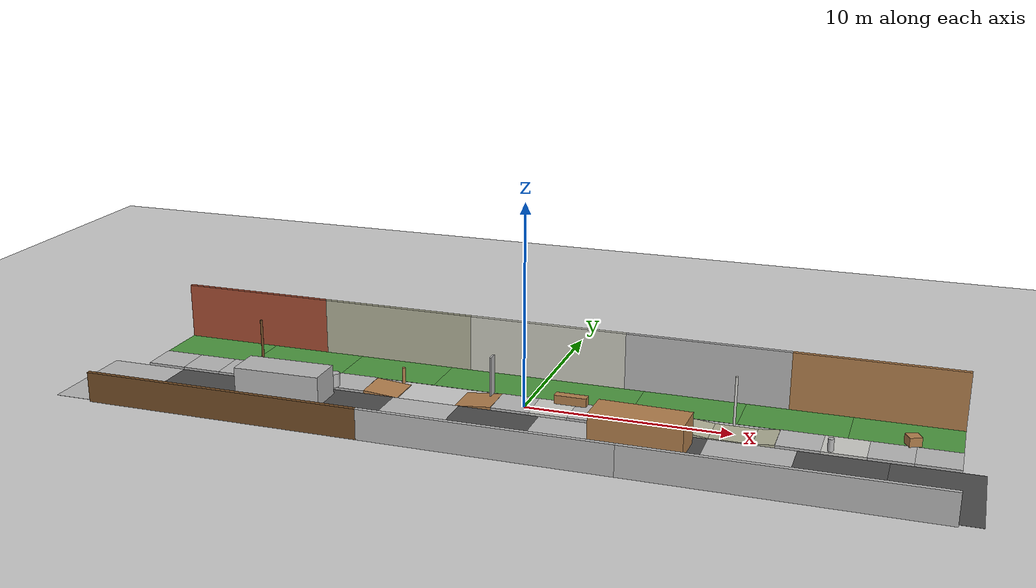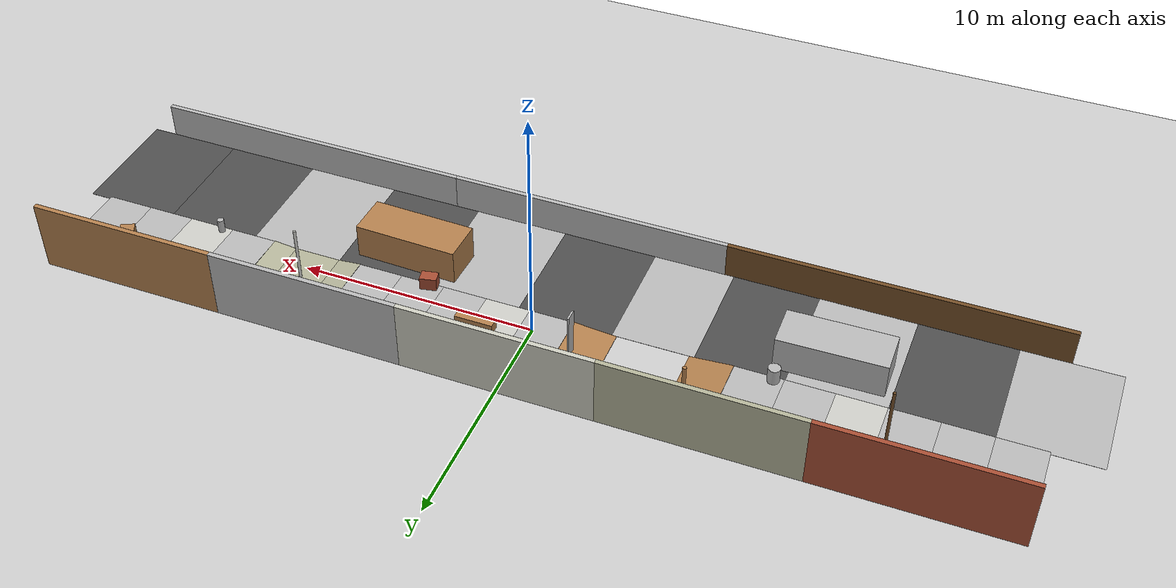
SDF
<?xml version="1.0"?>
<sdf version="1.6">
  <world name="sidewalk">
    <include><uri>model://sun</uri></include>
    <include><uri>model://ground_plane</uri></include>

    <model name="roadway">
      <static>true</static>
      <link name="l">
        <visual name="r01"><pose>-20 -3.45 0.004 0 0 0</pose><geometry><box><size>4 5.1 0.004</size></box></geometry>
          <material><script><uri>file://media/materials/scripts/gazebo.material</uri><name>Gazebo/Motorway</name></script></material></visual>
        <visual name="r02"><pose>-16 -3.45 0.004 0 0 0</pose><geometry><box><size>4 5.1 0.004</size></box></geometry>
          <material><script><uri>file://media/materials/scripts/gazebo.material</uri><name>Gazebo/Road</name></script></material></visual>
        <visual name="r03"><pose>-12 -3.45 0.004 0 0 0</pose><geometry><box><size>4 5.1 0.004</size></box></geometry>
          <material><script><uri>file://media/materials/scripts/gazebo.material</uri><name>Gazebo/Motorway</name></script></material></visual>
        <visual name="r04"><pose>-8.2 -3.45 0.004 0 0 0</pose><geometry><box><size>3.6 5.1 0.004</size></box></geometry>
          <material><script><uri>file://media/materials/scripts/gazebo.material</uri><name>Gazebo/Road</name></script></material></visual>
        <!-- the crossing itself, striped -->
        <visual name="r05_crossing"><pose>-4.7 -3.45 0.004 0 0 0</pose><geometry><box><size>3.4 5.1 0.004</size></box></geometry>
          <material><script><uri>file://media/materials/scripts/gazebo.material</uri><name>Gazebo/Runway</name></script></material></visual>
        <visual name="r06"><pose>-1 -3.45 0.004 0 0 0</pose><geometry><box><size>4 5.1 0.004</size></box></geometry>
          <material><script><uri>file://media/materials/scripts/gazebo.material</uri><name>Gazebo/Road</name></script></material></visual>
        <visual name="r07"><pose>3 -3.45 0.004 0 0 0</pose><geometry><box><size>4 5.1 0.004</size></box></geometry>
          <material><script><uri>file://media/materials/scripts/gazebo.material</uri><name>Gazebo/Motorway</name></script></material></visual>
        <visual name="r08"><pose>7 -3.45 0.004 0 0 0</pose><geometry><box><size>4 5.1 0.004</size></box></geometry>
          <material><script><uri>file://media/materials/scripts/gazebo.material</uri><name>Gazebo/Road</name></script></material></visual>
        <visual name="r09"><pose>11 -3.45 0.004 0 0 0</pose><geometry><box><size>4 5.1 0.004</size></box></geometry>
          <material><script><uri>file://media/materials/scripts/gazebo.material</uri><name>Gazebo/Motorway</name></script></material></visual>
        <visual name="r10"><pose>15 -3.45 0.004 0 0 0</pose><geometry><box><size>4 5.1 0.004</size></box></geometry>
          <material><script><uri>file://media/materials/scripts/gazebo.material</uri><name>Gazebo/Road</name></script></material></visual>
        <visual name="r11"><pose>19 -3.45 0.004 0 0 0</pose><geometry><box><size>4 5.1 0.004</size></box></geometry>
          <material><script><uri>file://media/materials/scripts/gazebo.material</uri><name>Gazebo/Road</name></script></material></visual>
      </link>
    </model>

    <model name="sidewalk">
      <static>true</static>
      <link name="l">

        <!-- ==== west plain run, x -20 to -8 ==== -->
        <collision name="w1_c"><pose>-19 0 0.075 0.02 0 0</pose><geometry><box><size>2 1.8 0.15</size></box></geometry></collision>
        <visual name="w1_v"><pose>-19 0 0.075 0.02 0 0</pose><geometry><box><size>2 1.8 0.15</size></box></geometry>
          <material><script><uri>file://media/materials/scripts/gazebo.material</uri><name>Gazebo/Pedestrian</name></script></material></visual>
        <collision name="w2_c"><pose>-17 0 0.075 0.02 0 0</pose><geometry><box><size>2 1.8 0.15</size></box></geometry></collision>
        <visual name="w2_v"><pose>-17 0 0.075 0.02 0 0</pose><geometry><box><size>2 1.8 0.15</size></box></geometry>
          <material><script><uri>file://media/materials/scripts/gazebo.material</uri><name>Gazebo/Steps</name></script></material></visual>
        <collision name="w3_c"><pose>-15 0 0.075 0.02 0 0</pose><geometry><box><size>2 1.8 0.15</size></box></geometry></collision>
        <visual name="w3_v"><pose>-15 0 0.075 0.02 0 0</pose><geometry><box><size>2 1.8 0.15</size></box></geometry>
          <material><script><uri>file://media/materials/scripts/gazebo.material</uri><name>Gazebo/Pedestrian</name></script></material></visual>
        <collision name="w4_c"><pose>-13 0 0.075 0.02 0 0</pose><geometry><box><size>2 1.8 0.15</size></box></geometry></collision>
        <visual name="w4_v"><pose>-13 0 0.075 0.02 0 0</pose><geometry><box><size>2 1.8 0.15</size></box></geometry>
          <material><script><uri>file://media/materials/scripts/gazebo.material</uri><name>Gazebo/CeilingTiled</name></script></material></visual>
        <collision name="w5_c"><pose>-11 0 0.075 0.02 0 0</pose><geometry><box><size>2 1.8 0.15</size></box></geometry></collision>
        <visual name="w5_v"><pose>-11 0 0.075 0.02 0 0</pose><geometry><box><size>2 1.8 0.15</size></box></geometry>
          <material><script><uri>file://media/materials/scripts/gazebo.material</uri><name>Gazebo/Pedestrian</name></script></material></visual>
        <collision name="w6_c"><pose>-9 0 0.075 0.02 0 0</pose><geometry><box><size>2 1.8 0.15</size></box></geometry></collision>
        <visual name="w6_v"><pose>-9 0 0.075 0.02 0 0</pose><geometry><box><size>2 1.8 0.15</size></box></geometry>
          <material><script><uri>file://media/materials/scripts/gazebo.material</uri><name>Gazebo/Steps</name></script></material></visual>

        <collision name="ramp_a_c"><pose>-7.1 0 0.0003 0 0.0831 0</pose><geometry><box><size>1.8 1.8 0.15</size></box></geometry></collision>
        <visual name="ramp_a_v"><pose>-7.1 0 0.0003 0 0.0831 0</pose><geometry><box><size>1.8 1.8 0.15</size></box></geometry>
          <material><script><uri>file://media/materials/scripts/gazebo.material</uri><name>Gazebo/WoodPallet</name></script></material></visual>

        <!-- ==== crossing, x -6.2 to -3.2: deliberately NO slab.
             The robot drops to road level and drives on the ground_plane. ==-->

        <!-- ==== kerb ramp UP, x -3.2 to -1.4 ==== -->
        <collision name="ramp_b_c"><pose>-2.3 0 0.0003 0 -0.0831 0</pose><geometry><box><size>1.8 1.8 0.15</size></box></geometry></collision>
        <visual name="ramp_b_v"><pose>-2.3 0 0.0003 0 -0.0831 0</pose><geometry><box><size>1.8 1.8 0.15</size></box></geometry>
          <material><script><uri>file://media/materials/scripts/gazebo.material</uri><name>Gazebo/WoodPallet</name></script></material></visual>

        <!-- ==== central plain run, x -1.4 to +8.0. Robot spawns at x=0. ==== -->
        <collision name="c1_c"><pose>-0.46 0 0.075 0.02 0 0</pose><geometry><box><size>1.88 1.8 0.15</size></box></geometry></collision>
        <visual name="c1_v"><pose>-0.46 0 0.075 0.02 0 0</pose><geometry><box><size>1.88 1.8 0.15</size></box></geometry>
          <material><script><uri>file://media/materials/scripts/gazebo.material</uri><name>Gazebo/Pedestrian</name></script></material></visual>
        <collision name="c2_c"><pose>1.42 0 0.075 0.02 0 0</pose><geometry><box><size>1.88 1.8 0.15</size></box></geometry></collision>
        <visual name="c2_v"><pose>1.42 0 0.075 0.02 0 0</pose><geometry><box><size>1.88 1.8 0.15</size></box></geometry>
          <material><script><uri>file://media/materials/scripts/gazebo.material</uri><name>Gazebo/CeilingTiled</name></script></material></visual>
        <collision name="c3_c"><pose>3.30 0 0.075 0.02 0 0</pose><geometry><box><size>1.88 1.8 0.15</size></box></geometry></collision>
        <visual name="c3_v"><pose>3.30 0 0.075 0.02 0 0</pose><geometry><box><size>1.88 1.8 0.15</size></box></geometry>
          <material><script><uri>file://media/materials/scripts/gazebo.material</uri><name>Gazebo/Pedestrian</name></script></material></visual>
        <collision name="c4_c"><pose>5.18 0 0.075 0.02 0 0</pose><geometry><box><size>1.88 1.8 0.15</size></box></geometry></collision>
        <visual name="c4_v"><pose>5.18 0 0.075 0.02 0 0</pose><geometry><box><size>1.88 1.8 0.15</size></box></geometry>
          <material><script><uri>file://media/materials/scripts/gazebo.material</uri><name>Gazebo/Steps</name></script></material></visual>
        <collision name="c5_c"><pose>7.06 0 0.075 0.02 0 0</pose><geometry><box><size>1.88 1.8 0.15</size></box></geometry></collision>
        <visual name="c5_v"><pose>7.06 0 0.075 0.02 0 0</pose><geometry><box><size>1.88 1.8 0.15</size></box></geometry>
          <material><script><uri>file://media/materials/scripts/gazebo.material</uri><name>Gazebo/Pedestrian</name></script></material></visual>

        <collision name="dw_down_c"><pose>8.5 0 0.0254 0 0.0997 0</pose><geometry><box><size>1.0 1.8 0.15</size></box></geometry></collision>
        <visual name="dw_down_v"><pose>8.5 0 0.0254 0 0.0997 0</pose><geometry><box><size>1.0 1.8 0.15</size></box></geometry>
          <material><script><uri>file://media/materials/scripts/gazebo.material</uri><name>Gazebo/Residential</name></script></material></visual>
        <collision name="dw_flat_c"><pose>10 0 -0.025 0 0 0</pose><geometry><box><size>2.0 1.8 0.15</size></box></geometry></collision>
        <visual name="dw_flat_v"><pose>10 0 -0.025 0 0 0</pose><geometry><box><size>2.0 1.8 0.15</size></box></geometry>
          <material><script><uri>file://media/materials/scripts/gazebo.material</uri><name>Gazebo/Residential</name></script></material></visual>
        <collision name="dw_up_c"><pose>11.5 0 0.0254 0 -0.0997 0</pose><geometry><box><size>1.0 1.8 0.15</size></box></geometry></collision>
        <visual name="dw_up_v"><pose>11.5 0 0.0254 0 -0.0997 0</pose><geometry><box><size>1.0 1.8 0.15</size></box></geometry>
          <material><script><uri>file://media/materials/scripts/gazebo.material</uri><name>Gazebo/Residential</name></script></material></visual>

        <!-- ==== east plain run, x +12 to +20 ==== -->
        <collision name="e1_c"><pose>13 0 0.075 0.02 0 0</pose><geometry><box><size>2 1.8 0.15</size></box></geometry></collision>
        <visual name="e1_v"><pose>13 0 0.075 0.02 0 0</pose><geometry><box><size>2 1.8 0.15</size></box></geometry>
          <material><script><uri>file://media/materials/scripts/gazebo.material</uri><name>Gazebo/Pedestrian</name></script></material></visual>
        <collision name="e2_c"><pose>15 0 0.075 0.02 0 0</pose><geometry><box><size>2 1.8 0.15</size></box></geometry></collision>
        <visual name="e2_v"><pose>15 0 0.075 0.02 0 0</pose><geometry><box><size>2 1.8 0.15</size></box></geometry>
          <material><script><uri>file://media/materials/scripts/gazebo.material</uri><name>Gazebo/CeilingTiled</name></script></material></visual>
        <collision name="e3_c"><pose>17 0 0.075 0.02 0 0</pose><geometry><box><size>2 1.8 0.15</size></box></geometry></collision>
        <visual name="e3_v"><pose>17 0 0.075 0.02 0 0</pose><geometry><box><size>2 1.8 0.15</size></box></geometry>
          <material><script><uri>file://media/materials/scripts/gazebo.material</uri><name>Gazebo/Pedestrian</name></script></material></visual>
        <collision name="e4_c"><pose>19 0 0.075 0.02 0 0</pose><geometry><box><size>2 1.8 0.15</size></box></geometry></collision>
        <visual name="e4_v"><pose>19 0 0.075 0.02 0 0</pose><geometry><box><size>2 1.8 0.15</size></box></geometry>
          <material><script><uri>file://media/materials/scripts/gazebo.material</uri><name>Gazebo/Steps</name></script></material></visual>

      </link>
    </model>

    <!-- ==== GRASS VERGE, y +0.9 to +3.5 ==============================
         Visual only, so it can never trap a wheel. Tiled in 5 m lengths. -->
    <model name="verge">
      <static>true</static>
      <link name="l">
        <visual name="g1"><pose>-17.5 2.2 0.145 0 0 0</pose><geometry><box><size>5 2.6 0.01</size></box></geometry>
          <material><script><uri>file://media/materials/scripts/gazebo.material</uri><name>Gazebo/Grass</name></script></material></visual>
        <visual name="g2"><pose>-12.5 2.2 0.145 0 0 0</pose><geometry><box><size>5 2.6 0.01</size></box></geometry>
          <material><script><uri>file://media/materials/scripts/gazebo.material</uri><name>Gazebo/Grass</name></script></material></visual>
        <visual name="g3"><pose>-7.5 2.2 0.145 0 0 0</pose><geometry><box><size>5 2.6 0.01</size></box></geometry>
          <material><script><uri>file://media/materials/scripts/gazebo.material</uri><name>Gazebo/Grass</name></script></material></visual>
        <visual name="g4"><pose>-2.5 2.2 0.145 0 0 0</pose><geometry><box><size>5 2.6 0.01</size></box></geometry>
          <material><script><uri>file://media/materials/scripts/gazebo.material</uri><name>Gazebo/Grass</name></script></material></visual>
        <visual name="g5"><pose>2.5 2.2 0.145 0 0 0</pose><geometry><box><size>5 2.6 0.01</size></box></geometry>
          <material><script><uri>file://media/materials/scripts/gazebo.material</uri><name>Gazebo/Grass</name></script></material></visual>
        <visual name="g6"><pose>7.5 2.2 0.145 0 0 0</pose><geometry><box><size>5 2.6 0.01</size></box></geometry>
          <material><script><uri>file://media/materials/scripts/gazebo.material</uri><name>Gazebo/Grass</name></script></material></visual>
        <visual name="g7"><pose>12.5 2.2 0.145 0 0 0</pose><geometry><box><size>5 2.6 0.01</size></box></geometry>
          <material><script><uri>file://media/materials/scripts/gazebo.material</uri><name>Gazebo/Grass</name></script></material></visual>
        <visual name="g8"><pose>17.5 2.2 0.145 0 0 0</pose><geometry><box><size>5 2.6 0.01</size></box></geometry>
          <material><script><uri>file://media/materials/scripts/gazebo.material</uri><name>Gazebo/Grass</name></script></material></visual>
      </link>
    </model>

    <model name="facades">
      <static>true</static>
      <link name="l">
        <collision name="f1_c"><pose>-16 3.6 1.5 0 0 0</pose><geometry><box><size>8 0.2 3</size></box></geometry></collision>
        <visual name="f1_v"><pose>-16 3.6 1.5 0 0 0</pose><geometry><box><size>8 0.2 3</size></box></geometry>
          <material><script><uri>file://media/materials/scripts/gazebo.material</uri><name>Gazebo/Bricks</name></script></material></visual>
        <collision name="f2_c"><pose>-8 3.6 1.5 0 0 0</pose><geometry><box><size>8 0.2 3</size></box></geometry></collision>
        <visual name="f2_v"><pose>-8 3.6 1.5 0 0 0</pose><geometry><box><size>8 0.2 3</size></box></geometry>
          <material><script><uri>file://media/materials/scripts/gazebo.material</uri><name>Gazebo/Residential</name></script></material></visual>
        <collision name="f3_c"><pose>0 3.6 1.5 0 0 0</pose><geometry><box><size>8 0.2 3</size></box></geometry></collision>
        <visual name="f3_v"><pose>0 3.6 1.5 0 0 0</pose><geometry><box><size>8 0.2 3</size></box></geometry>
          <material><script><uri>file://media/materials/scripts/gazebo.material</uri><name>Gazebo/PaintedWall</name></script></material></visual>
        <collision name="f4_c"><pose>8 3.6 1.5 0 0 0</pose><geometry><box><size>8 0.2 3</size></box></geometry></collision>
        <visual name="f4_v"><pose>8 3.6 1.5 0 0 0</pose><geometry><box><size>8 0.2 3</size></box></geometry>
          <material><script><uri>file://media/materials/scripts/gazebo.material</uri><name>Gazebo/BuildingFrame</name></script></material></visual>
        <collision name="f5_c"><pose>16 3.6 1.5 0 0 0</pose><geometry><box><size>8 0.2 3</size></box></geometry></collision>
        <visual name="f5_v"><pose>16 3.6 1.5 0 0 0</pose><geometry><box><size>8 0.2 3</size></box></geometry>
          <material><script><uri>file://media/materials/scripts/gazebo.material</uri><name>Gazebo/Wood</name></script></material></visual>
      </link>
    </model>

    <model name="far_wall">
      <static>true</static>
      <link name="l">
        <collision name="b1_c"><pose>-13 -6.1 0.75 0 0 0</pose><geometry><box><size>14 0.2 1.5</size></box></geometry></collision>
        <visual name="b1_v"><pose>-13 -6.1 0.75 0 0 0</pose><geometry><box><size>14 0.2 1.5</size></box></geometry>
          <material><script><uri>file://media/materials/scripts/gazebo.material</uri><name>Gazebo/Trunk</name></script></material></visual>
        <collision name="b2_c"><pose>0 -6.1 0.75 0 0 0</pose><geometry><box><size>12 0.2 1.5</size></box></geometry></collision>
        <visual name="b2_v"><pose>0 -6.1 0.75 0 0 0</pose><geometry><box><size>12 0.2 1.5</size></box></geometry>
          <material><script><uri>file://media/materials/scripts/gazebo.material</uri><name>Gazebo/Primary</name></script></material></visual>
        <collision name="b3_c"><pose>13 -6.1 0.75 0 0 0</pose><geometry><box><size>14 0.2 1.5</size></box></geometry></collision>
        <visual name="b3_v"><pose>13 -6.1 0.75 0 0 0</pose><geometry><box><size>14 0.2 1.5</size></box></geometry>
          <material><script><uri>file://media/materials/scripts/gazebo.material</uri><name>Gazebo/Secondary</name></script></material></visual>
      </link>
    </model>

    <model name="pole_a"><static>true</static><pose>-14.3 0.72 1.35 0 0 0</pose>
      <link name="l"><collision name="c"><geometry><cylinder><radius>0.06</radius><length>2.4</length></cylinder></geometry></collision>
        <visual name="v"><geometry><cylinder><radius>0.06</radius><length>2.4</length></cylinder></geometry>
          <material><script><uri>file://media/materials/scripts/gazebo.material</uri><name>Gazebo/Trunk</name></script></material></visual></link></model>

    <model name="bin_a"><static>true</static><pose>-9.6 -0.70 0.45 0 0 0.3</pose>
      <link name="l"><collision name="c"><geometry><cylinder><radius>0.25</radius><length>0.7</length></cylinder></geometry></collision>
        <visual name="v"><geometry><cylinder><radius>0.25</radius><length>0.7</length></cylinder></geometry>
          <material><script><uri>file://media/materials/scripts/gazebo.material</uri><name>Gazebo/Motorway</name></script></material></visual></link></model>

    <model name="bollard_a"><static>true</static><pose>-6.5 0.7 0.55 0 0 0</pose>
      <link name="l"><collision name="c"><geometry><cylinder><radius>0.08</radius><length>0.8</length></cylinder></geometry></collision>
        <visual name="v"><geometry><cylinder><radius>0.08</radius><length>0.8</length></cylinder></geometry>
          <material><script><uri>file://media/materials/scripts/gazebo.material</uri><name>Gazebo/WoodPallet</name></script></material></visual></link></model>

    <model name="sign_crossing"><static>true</static><pose>-1.9 0.74 1.1 0 0 0</pose>
      <link name="l"><collision name="c"><geometry><box><size>0.08 0.5 2.0</size></box></geometry></collision>
        <visual name="v"><geometry><box><size>0.08 0.5 2.0</size></box></geometry>
          <material><script><uri>file://media/materials/scripts/gazebo.material</uri><name>Gazebo/Runway</name></script></material></visual></link></model>

    <model name="bench_a"><static>true</static><pose>2.1 0.74 0.37 0 0 0</pose>
      <link name="l"><collision name="c"><geometry><box><size>1.6 0.45 0.45</size></box></geometry></collision>
        <visual name="v"><geometry><box><size>1.6 0.45 0.45</size></box></geometry>
          <material><script><uri>file://media/materials/scripts/gazebo.material</uri><name>Gazebo/Wood</name></script></material></visual></link></model>

    <model name="planter_a"><static>true</static><pose>4.8 -0.74 0.42 0 0 0.2</pose>
      <link name="l"><collision name="c"><geometry><box><size>0.7 0.5 0.55</size></box></geometry></collision>
        <visual name="v"><geometry><box><size>0.7 0.5 0.55</size></box></geometry>
          <material><script><uri>file://media/materials/scripts/gazebo.material</uri><name>Gazebo/Bricks</name></script></material></visual></link></model>

    <model name="pole_b"><static>true</static><pose>9.9 0.71 1.35 0 0 0</pose>
      <link name="l"><collision name="c"><geometry><cylinder><radius>0.06</radius><length>2.4</length></cylinder></geometry></collision>
        <visual name="v"><geometry><cylinder><radius>0.06</radius><length>2.4</length></cylinder></geometry>
          <material><script><uri>file://media/materials/scripts/gazebo.material</uri><name>Gazebo/CeilingTiled</name></script></material></visual></link></model>

    <model name="hydrant_a"><static>true</static><pose>14.4 -0.68 0.4 0 0 0</pose>
      <link name="l"><collision name="c"><geometry><cylinder><radius>0.14</radius><length>0.65</length></cylinder></geometry></collision>
        <visual name="v"><geometry><cylinder><radius>0.14</radius><length>0.65</length></cylinder></geometry>
          <material><script><uri>file://media/materials/scripts/gazebo.material</uri><name>Gazebo/Steps</name></script></material></visual></link></model>

    <model name="box_stack"><static>true</static><pose>17.8 1.15 0.3 0 0 0.45</pose>
      <link name="l"><collision name="c"><geometry><box><size>0.6 0.6 0.6</size></box></geometry></collision>
        <visual name="v"><geometry><box><size>0.6 0.6 0.6</size></box></geometry>
          <material><script><uri>file://media/materials/scripts/gazebo.material</uri><name>Gazebo/WoodFloor</name></script></material></visual></link></model>

    <!-- parked vehicles on the roadway: big, distinctive, and only visible from
         certain stretches, which makes them good place signatures -->
    <model name="parked_a"><static>true</static><pose>-11.5 -2.4 0.75 0 0 0.02</pose>
      <link name="l"><collision name="c"><geometry><box><size>4.4 1.8 1.5</size></box></geometry></collision>
        <visual name="v"><geometry><box><size>4.4 1.8 1.5</size></box></geometry>
          <material><script><uri>file://media/materials/scripts/gazebo.material</uri><name>Gazebo/PioneerBody</name></script></material></visual></link></model>

    <model name="parked_b"><static>true</static><pose>6.2 -2.4 0.75 0 0 -0.03</pose>
      <link name="l"><collision name="c"><geometry><box><size>4.4 1.8 1.5</size></box></geometry></collision>
        <visual name="v"><geometry><box><size>4.4 1.8 1.5</size></box></geometry>
          <material><script><uri>file://media/materials/scripts/gazebo.material</uri><name>Gazebo/WoodPallet</name></script></material></visual></link></model>

    <physics type="ode"><real_time_update_rate>1000</real_time_update_rate><max_step_size>0.001</max_step_size></physics>
    <scene><ambient>0.5 0.5 0.5 1</ambient><background>0.7 0.75 0.8 1</background><shadows>false</shadows></scene>
  </world>
</sdf>
